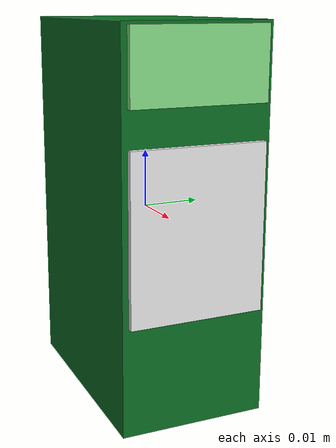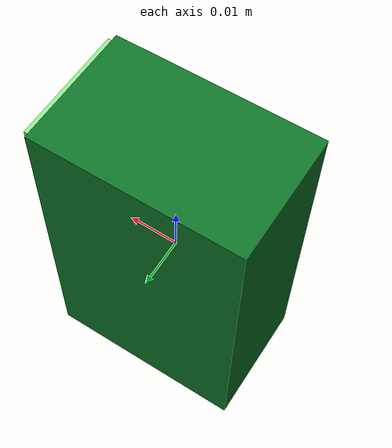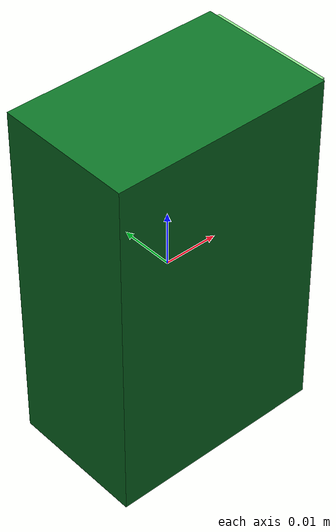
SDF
<?xml version="1.0" ?>
<sdf version="1.6">
  <!--
    Green antibiotic box  -  MEDIUM-TALL  0.040(x) x 0.025(y) x 0.065(z) m
    y = 25 mm  ->  within ~30 mm gripper opening
    Mass 45 g
  -->
  <model name="medicine_packet_b">
    <static>false</static>
    <link name="link">
      <inertial>
        <mass>0.045</mass>
        <inertia>
          <ixx>0.000018</ixx><ixy>0</ixy><ixz>0</ixz>
          <iyy>0.000022</iyy><iyz>0</iyz>
          <izz>0.0000083</izz>
        </inertia>
      </inertial>
      <collision name="col">
        <geometry><box><size>0.040 0.025 0.065</size></box></geometry>
        <surface><friction><ode><mu>0.9</mu><mu2>0.9</mu2></ode></friction></surface>
      </collision>
      <!-- Main body - forest green -->
      <visual name="body">
        <geometry><box><size>0.040 0.025 0.065</size></box></geometry>
        <material>
          <ambient>0.05 0.45 0.15 1</ambient>
          <diffuse>0.05 0.45 0.15 1</diffuse>
          <specular>0.15 0.25 0.15 1</specular>
        </material>
      </visual>
      <!-- White label band -->
      <visual name="label">
        <pose>0.0205 0 0 0 0 0</pose>
        <geometry><box><size>0.001 0.023 0.028</size></box></geometry>
        <material><ambient>0.95 0.95 0.95 1</ambient><diffuse>0.95 0.95 0.95 1</diffuse></material>
      </visual>
      <!-- Light-green top stripe -->
      <visual name="stripe_top">
        <pose>0.0205 0 0.026 0 0 0</pose>
        <geometry><box><size>0.001 0.023 0.012</size></box></geometry>
        <material><ambient>0.55 0.90 0.55 1</ambient><diffuse>0.55 0.90 0.55 1</diffuse></material>
      </visual>
    </link>
  </model>
</sdf>
